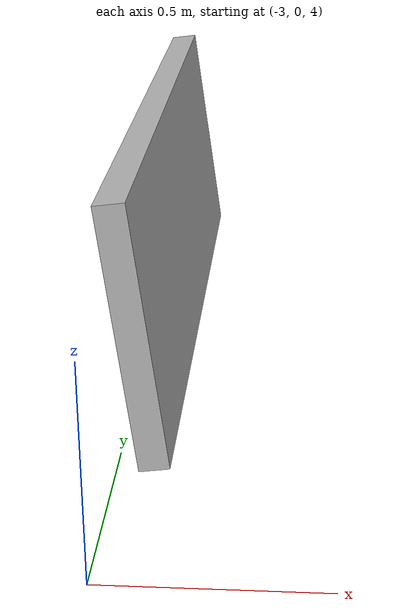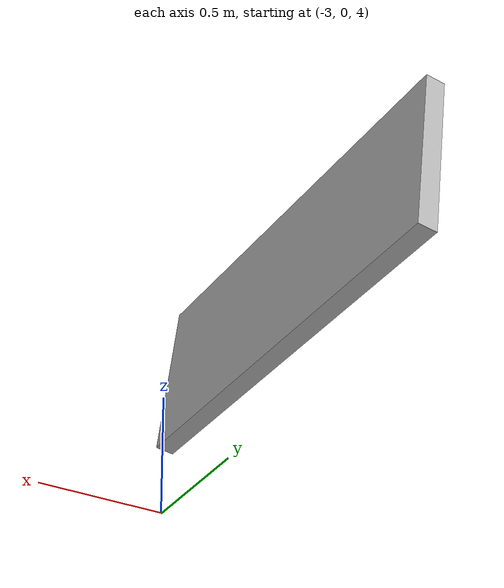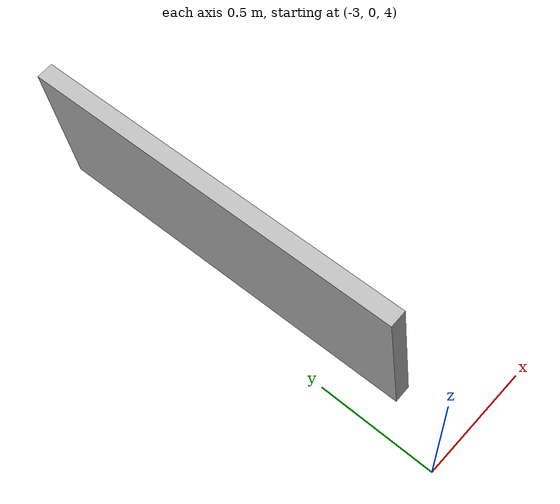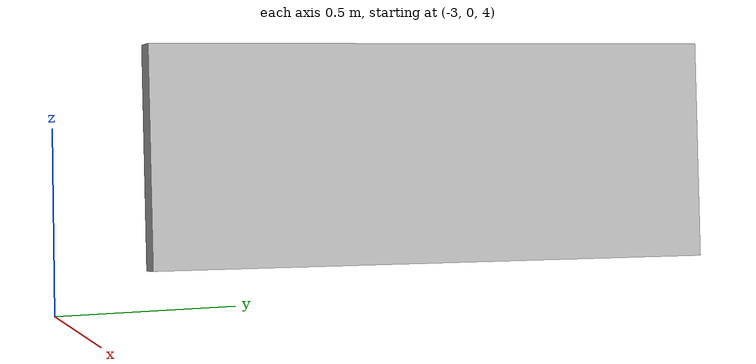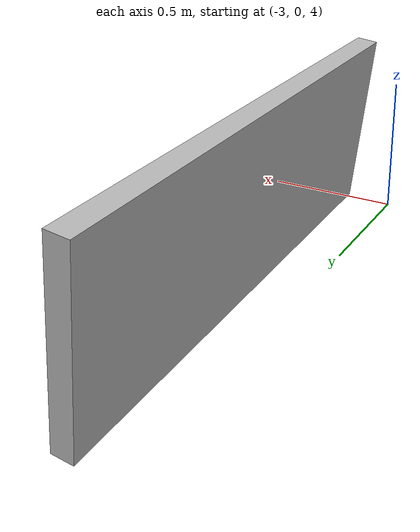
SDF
<?xml version="1.0" ?>
<sdf version="1.5">
  <model name="arena_hawker_centre_food_sign_10">
    <pose>0 0 0 0 0 0</pose>
    <static>true</static>
    <link name="body">
      <visual name="visual">
        <geometry>
          <mesh><uri>model://arena_hawker_centre_food_sign_10/media/arena_hawker_centre_food_sign_10.dae</uri></mesh>
        </geometry>
      </visual>
      <collision name="collision">
        <geometry>
          <mesh><uri>model://arena_hawker_centre_food_sign_10/media/arena_hawker_centre_food_sign_10.dae</uri></mesh>
        </geometry>
      </collision>
    </link>
  </model>
</sdf>
